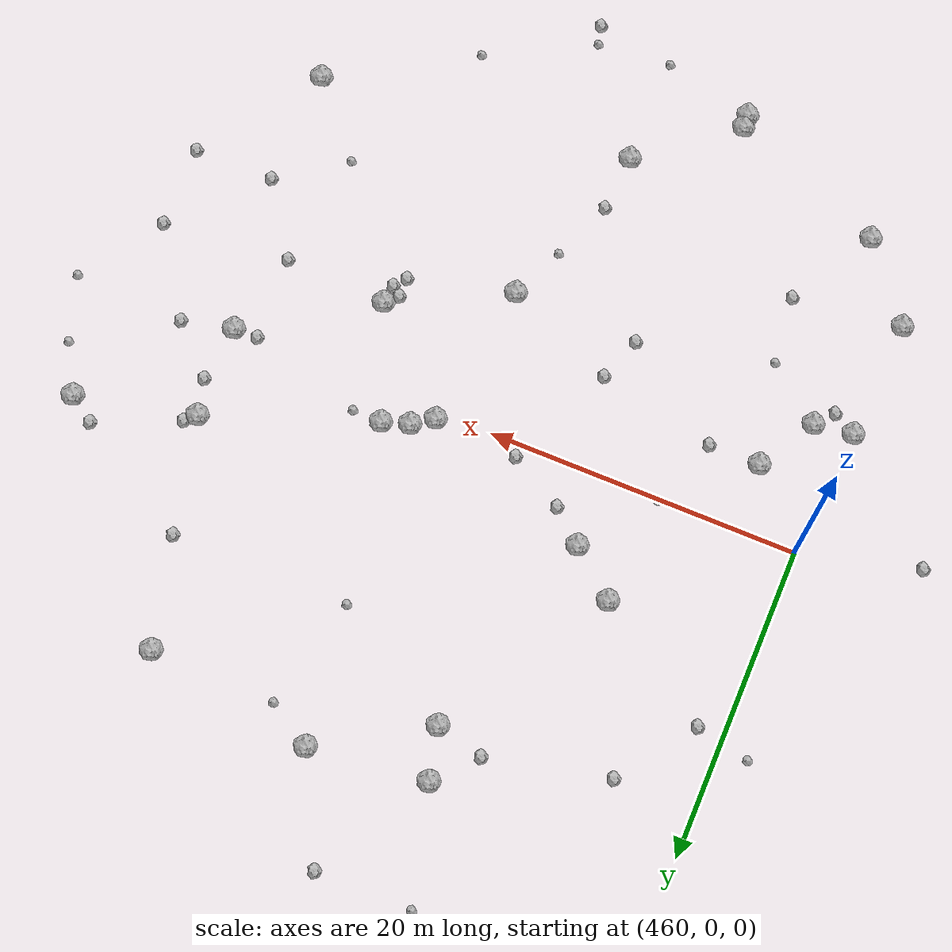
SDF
<sdf version="1.6">
 <world name="default">
  <include><uri>model://sun</uri></include>
  <model name="rock1_12_4">
   <include><uri>model://rock1</uri><pose>458.828432974632 -16.01321497256667 0.5 0 0 0</pose></include>
  </model>
  <model name="rock1_12_5">
   <include><uri>model://rock1</uri><pose>497.3872104815917 -0.15509587709231454 0.5 0 0 0</pose></include>
  </model>
  <model name="rock1_12_6">
   <include><uri>model://rock1</uri><pose>469.47366106062606 7.07633169180513 0.5 0 0 0</pose></include>
  </model>
  <model name="rock1_12_7">
   <include><uri>model://rock1</uri><pose>478.6229067092226 -19.977682204628138 0.5 0 0 0</pose></include>
  </model>
  <model name="rock1_12_8">
   <include><uri>model://rock1</uri><pose>462.6447843770795 -20.716877993586372 0.5 0 0 0</pose></include>
  </model>
  <model name="rock1_12_9">
   <include><uri>model://rock1</uri><pose>486.57761658838285 1.9318484660329602 0.5 0 0 0</pose></include>
  </model>
  <model name="rock1_12_10">
   <include><uri>model://rock1</uri><pose>484.85136964495564 1.3746998043794925 0.5 0 0 0</pose></include>
  </model>
  <model name="rock1_12_11">
   <include><uri>model://rock1</uri><pose>475.3476064136871 21.290987068849972 0.5 0 0 0</pose></include>
  </model>
  <model name="rock1_12_12">
   <include><uri>model://rock1</uri><pose>461.77987596381183 -8.022410686754519 0.5 0 0 0</pose></include>
  </model>
  <model name="rock1_12_13">
   <include><uri>model://rock1</uri><pose>476.1234692099038 17.986303678397363 0.5 0 0 0</pose></include>
  </model>
  <model name="rock1_12_14">
   <include><uri>model://rock1</uri><pose>472.45321892291133 4.588217676627146 0.5 0 0 0</pose></include>
  </model>
  <model name="rock1_12_15">
   <include><uri>model://rock1</uri><pose>482.98776638232926 22.147524275680325 0.5 0 0 0</pose></include>
  </model>
  <model name="rock1_12_16">
   <include><uri>model://rock1</uri><pose>472.74200510128753 -25.519949625989724 0.5 0 0 0</pose></include>
  </model>
  <model name="rock1_12_17">
   <include><uri>model://rock1</uri><pose>481.98566267259855 -8.976830550192993 0.5 0 0 0</pose></include>
  </model>
  <model name="rock1_12_18">
   <include><uri>model://rock1</uri><pose>463.96848226238814 -4.372136347236587 0.5 0 0 0</pose></include>
  </model>
  <model name="rock1_12_19">
   <include><uri>model://rock1</uri><pose>489.41969065902003 -5.268992507301125 0.5 0 0 0</pose></include>
  </model>
  <model name="rock1_12_20">
   <include><uri>model://rock1</uri><pose>472.70219936618724 -24.664467756012023 0.5 0 0 0</pose></include>
  </model>
  <model name="rock1_12_21">
   <include><uri>model://rock1</uri><pose>504.91651474673034 7.536537073020675 0.5 0 0 0</pose></include>
  </model>
  <model name="rock1_12_22">
   <include><uri>model://rock1</uri><pose>498.9226901385072 -17.68326260713613 0.5 0 0 0</pose></include>
  </model>
  <model name="rock1_12_23">
   <include><uri>model://rock1</uri><pose>493.9132470755975 20.29028802221731 0.5 0 0 0</pose></include>
  </model>
  <model name="rock1_12_24">
   <include><uri>model://rock1</uri><pose>497.2447508000116 5.815408036802857 0.5 0 0 0</pose></include>
  </model>
  <model name="rock1_12_25">
   <include><uri>model://rock1</uri><pose>483.52008949147245 0.46798045768109375 0.5 0 0 0</pose></include>
  </model>
  <model name="rock1_12_26">
   <include><uri>model://rock1</uri><pose>459.2794817195581 -8.353332434918737 0.5 0 0 0</pose></include>
  </model>
  <model name="rock2_12_0">
   <include><uri>model://rock2</uri><pose>465.1710071067845 17.000607387788293 0.3 0 0 0</pose></include>
  </model>
  <model name="rock2_12_1">
   <include><uri>model://rock2</uri><pose>478.0302689435744 0.8292089699533101 0.3 0 0 0</pose></include>
  </model>
  <model name="rock2_12_2">
   <include><uri>model://rock2</uri><pose>478.8776250710851 -16.314351025867687 0.3 0 0 0</pose></include>
  </model>
  <model name="rock2_12_3">
   <include><uri>model://rock2</uri><pose>504.2780242122234 -4.854007702038945 0.3 0 0 0</pose></include>
  </model>
  <model name="rock2_12_4">
   <include><uri>model://rock2</uri><pose>452.3734825640548 -1.9800381499075677 0.3 0 0 0</pose></include>
  </model>
  <model name="rock2_12_5">
   <include><uri>model://rock2</uri><pose>473.00140666571986 18.778727484447934 0.3 0 0 0</pose></include>
  </model>
  <model name="rock2_12_6">
   <include><uri>model://rock2</uri><pose>495.59606153083416 13.294012235338727 0.3 0 0 0</pose></include>
  </model>
  <model name="rock2_12_7">
   <include><uri>model://rock2</uri><pose>496.05104185198854 -5.604024085014306 0.3 0 0 0</pose></include>
  </model>
  <model name="rock2_12_8">
   <include><uri>model://rock2</uri><pose>497.81750815895066 3.4848224250963042 0.3 0 0 0</pose></include>
  </model>
  <model name="rock2_12_9">
   <include><uri>model://rock2</uri><pose>497.90877332124046 6.439403323465221 0.3 0 0 0</pose></include>
  </model>
  <model name="rock2_12_10">
   <include><uri>model://rock2</uri><pose>473.855088188689 -8.822201511982762 0.3 0 0 0</pose></include>
  </model>
  <model name="rock2_12_11">
   <include><uri>model://rock2</uri><pose>500.6828256417969 0.5922800128335197 0.3 0 0 0</pose></include>
  </model>
  <model name="rock2_12_12">
   <include><uri>model://rock2</uri><pose>460.73846363595254 -9.17632797838695 0.3 0 0 0</pose></include>
  </model>
  <model name="rock2_12_13">
   <include><uri>model://rock2</uri><pose>499.1549942667357 -10.160867658544252 0.3 0 0 0</pose></include>
  </model>
  <model name="rock2_12_14">
   <include><uri>model://rock2</uri><pose>461.6506854580714 12.198567199644884 0.3 0 0 0</pose></include>
  </model>
  <model name="rock2_12_15">
   <include><uri>model://rock2</uri><pose>479.58048526570275 28.75552759151963 0.3 0 0 0</pose></include>
  </model>
  <model name="rock2_12_16">
   <include><uri>model://rock2</uri><pose>489.27275300193764 -6.518357368771511 0.3 0 0 0</pose></include>
  </model>
  <model name="rock2_12_17">
   <include><uri>model://rock2</uri><pose>504.3215913591506 -10.121029422175226 0.3 0 0 0</pose></include>
  </model>
  <model name="rock2_12_18">
   <include><uri>model://rock2</uri><pose>474.8617869180113 -6.0020918343669685 0.3 0 0 0</pose></include>
  </model>
  <model name="rock2_12_19">
   <include><uri>model://rock2</uri><pose>488.6491321342599 -6.019461569310835 0.3 0 0 0</pose></include>
  </model>
  <model name="rock2_12_20">
   <include><uri>model://rock2</uri><pose>483.6397739353349 -27.730787134870795 0.3 0 0 0</pose></include>
  </model>
  <model name="rock2_12_21">
   <include><uri>model://rock2</uri><pose>465.82901482488217 -15.213899557910697 0.3 0 0 0</pose></include>
  </model>
  <model name="rock2_12_22">
   <include><uri>model://rock2</uri><pose>488.64927641813784 -7.266829847803415 0.3 0 0 0</pose></include>
  </model>
  <model name="rock2_12_23">
   <include><uri>model://rock2</uri><pose>503.22945818850644 8.720119093953166 0.3 0 0 0</pose></include>
  </model>
  <model name="rock2_12_24">
   <include><uri>model://rock2</uri><pose>495.82613409609036 -0.20316563897672424 0.3 0 0 0</pose></include>
  </model>
  <model name="rock2_12_25">
   <include><uri>model://rock2</uri><pose>474.49337541598106 2.814985181796189 0.3 0 0 0</pose></include>
  </model>
  <model name="rock2_12_26">
   <include><uri>model://rock2</uri><pose>467.25506792087145 -4.366405257736329 0.3 0 0 0</pose></include>
  </model>
  <model name="rock3_12_0">
   <include><uri>model://rock3</uri><pose>465.3104092440789 -10.896593968047732 0.2 0 0 0</pose></include>
  </model>
  <model name="rock3_12_1">
   <include><uri>model://rock3</uri><pose>480.4281130026979 -12.448745613167723 0.2 0 0 0</pose></include>
  </model>
  <model name="rock3_12_2">
   <include><uri>model://rock3</uri><pose>506.5974381478169 4.425382165529413 0.2 0 0 0</pose></include>
  </model>
  <model name="rock3_12_3">
   <include><uri>model://rock3</uri><pose>489.98029269969237 -23.04358063231668 0.2 0 0 0</pose></include>
  </model>
  <model name="rock3_12_4">
   <include><uri>model://rock3</uri><pose>485.7990807560406 20.410948463240075 0.2 0 0 0</pose></include>
  </model>
  <model name="rock3_12_5">
   <include><uri>model://rock3</uri><pose>494.91770133987114 -13.210257232391239 0.2 0 0 0</pose></include>
  </model>
  <model name="rock3_12_6">
   <include><uri>model://rock3</uri><pose>507.8825747414232 0.2542964667135976 0.2 0 0 0</pose></include>
  </model>
  <model name="rock3_12_7">
   <include><uri>model://rock3</uri><pose>478.52906188418285 -26.982463811634165 0.2 0 0 0</pose></include>
  </model>
  <model name="rock3_12_8">
   <include><uri>model://rock3</uri><pose>473.3509147677836 28.679070625058174 0.2 0 0 0</pose></include>
  </model>
  <model name="rock3_12_9">
   <include><uri>model://rock3</uri><pose>484.04188558535407 13.230884174477808 0.2 0 0 0</pose></include>
  </model>
  <model name="rock3_12_10">
   <include><uri>model://rock3</uri><pose>458.1289680931575 12.928068329868438 0.2 0 0 0</pose></include>
  </model>
  <model name="rock3_12_11">
   <include><uri>model://rock3</uri><pose>468.8823980249702 0.04966194632715215 0.2 0 0 0</pose></include>
  </model>
  <model name="rock3_12_12">
   <include><uri>model://rock3</uri><pose>483.31165810336734 -26.558413557607693 0.2 0 0 0</pose></include>
  </model>
  <model name="rock3_12_13">
   <include><uri>model://rock3</uri><pose>488.45351706515663 1.8259765149117797 0.2 0 0 0</pose></include>
  </model>
 </world>
</sdf>
